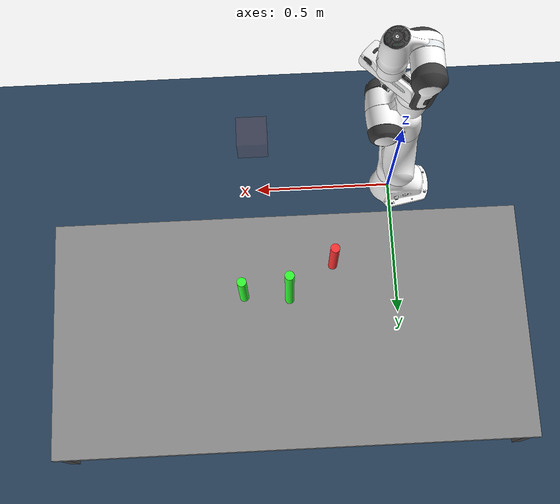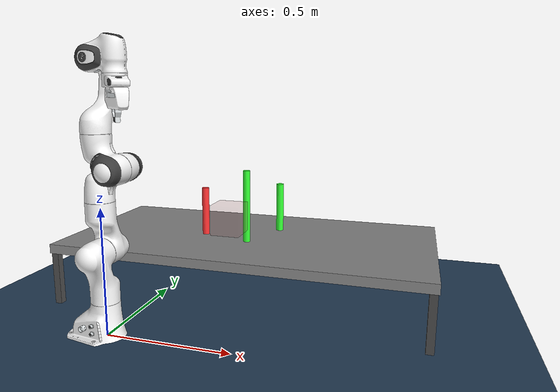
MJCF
<mujoco model="panda scene">
  <include file="base_panda.xml"/>

  <statistic center="0.3 0 0.4" extent="1"/>

  <option timestep="0.005" iterations="5" ls_iterations="8" integrator="implicitfast">
    <flag eulerdamp="disable"/>
  </option>

  <custom>
    <numeric data="12" name="max_contact_points"/>
  </custom>

  <visual>
    <headlight diffuse="0.6 0.6 0.6" ambient="0.3 0.3 0.3" specular="0 0 0"/>
    <rgba haze="0.15 0.25 0.35 1"/>
    <global azimuth="120" elevation="-20"/>
    <scale contactwidth="0.075" contactheight="0.025" forcewidth="0.05" com="0.05" framewidth="0.01" framelength="0.2"/>
  </visual>

  <asset>
    <texture type="skybox" builtin="gradient" rgb1="0.3 0.5 0.7" rgb2="0 0 0" width="512" height="3072"/>
    <texture type="2d" name="groundplane" builtin="checker" mark="edge" rgb1="0.2 0.3 0.4" rgb2="0.1 0.2 0.3"
      markrgb="0.8 0.8 0.8" width="300" height="300"/>
    <material name="groundplane" texture="groundplane" texuniform="true" texrepeat="5 5" reflectance="0.2"/>

    <material name="cylinder_mat1" rgba="1 0.2 0.2 1"/>
    <material name="cylinder_mat2" rgba="0.2 1 0.2 1"/>
    <material name="cylinder_mat3" rgba="0.2 0.2 1 1"/>
  </asset>

  <worldbody>
    <light pos="0 0 1.5" dir="0 0 -1" directional="true"/>

    <!-- Cameras for RGB-D capture -->
    <camera name="top_camera" pos="0.4 0.4 1.5" xyaxes="1 0 0 0 1 0" fovy="60"/>
    <camera name="side_camera" pos="1.6 0.55 0.8" euler="0 1.07 1.57" fovy="55"/>
    <camera name="front_camera" pos="0.4 -0.4 0.7" xyaxes="1 0 0 0 0.4 0.8" fovy="60"/>

    <geom name="floor" size="0 0 0.05" type="plane" material="groundplane" contype="1"/>

    <body name="target" pos="0.5 0 .5" quat="0 1 0 0" mocap="true">
      <geom type="box" size=".05 .05 .05" contype="0" conaffinity="0" rgba=".6 .3 .3 .2"/>
    </body>

    <body name="simple_table" pos="0 0.4 0" quat="0 0 0 1">
      <joint name="table_joint" type="free"/>

      <!-- tabletop -->
      <geom type="box" size="0.8 0.4 0.02" pos="-0.4 -0.2 0.25"
            rgba="0.55 0.55 0.55 1"/>

      <!-- legs -->
      <geom type="box" size="0.015 0.015 0.12" pos=" 0.38  0.18 0.12"
            rgba="0.3 0.3 0.3 1"/>
      <geom type="box" size="0.015 0.015 0.12" pos="-1.18  0.18 0.12"
            rgba="0.3 0.3 0.3 1"/>
      <geom type="box" size="0.015 0.015 0.12" pos=" 0.38 -0.58 0.12"
            rgba="0.3 0.3 0.3 1"/>
      <geom type="box" size="0.015 0.015 0.12" pos="-1.18 -0.58 0.12"
            rgba="0.3 0.3 0.3 1"/>

      <!-- picking sites (mid-thickness) -->
      <site name="site_right" pos="-0.20 0 0.25" size="0.005"
            rgba="1 0 0 1"  type="sphere" euler="-1.57 1.57 0"/>
      <site name="site_left"  pos=" 0.20 0 0.25" size="0.005"
            rgba="0 1 0 1"  type="sphere" euler="-1.57 -1.57 0"/>
    </body>

    <body name="cylinder1" pos="0.25 0.4 0.420">
      <joint name="cylinder1_freejoint" type="free"/>
      <inertial mass="0.05" pos="0 0 0" diaginertia="0.0250 0.0250 0.0125"/>
      <geom name="cylinder1_geom" type="cylinder" size="0.015 0.10" material="cylinder_mat1"
            solimp="0.99 0.99 0.01" solref="0.02 1"/>
    </body>

    <body name="cylinder2" pos="0.55 0.5 0.435">
      <joint name="cylinder2_freejoint" type="free"/>
      <inertial mass="0.05" pos="0 0 0" diaginertia="0.0420 0.0420 0.0120"/>
      <geom name="cylinder2_geom" type="cylinder" size="0.015 0.10" material="cylinder_mat2"
            solimp="0.99 0.99 0.01" solref="0.02 1"/>
    </body>

    <body name="cylinder3" pos="0.4 0.5 0.425">
      <joint name="cylinder3_freejoint" type="free"/>
      <inertial mass="0.05" pos="0 0 0" diaginertia="0.0180 0.0180 0.0072"/>
      <geom name="cylinder3_geom" type="cylinder" size="0.015 0.16" material="cylinder_mat2"
            solimp="0.99 0.99 0.01" solref="0.02 1"/>
    </body>
  </worldbody>
</mujoco>

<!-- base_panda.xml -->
<mujoco model="panda">
  <compiler angle="radian" meshdir="assets" autolimits="true"/>

  <default>
    <default class="panda">
      <material specular="0.5" shininess="0.25"/>
      <joint armature="0.1" damping="1" axis="0 0 1" range="-2.8973 2.8973"/>
      <general dyntype="none" biastype="affine" ctrlrange="-2.8973 2.8973" forcerange="-87 87"/>
      <position forcerange="-100 100"/>
      <default class="finger">
        <joint axis="0 1 0" type="slide" range="0 0.04"/>
      </default>

      <default class="visual">
        <geom type="mesh" contype="0" conaffinity="0" group="2"/>
      </default>
      <default class="collision">
        <geom group="3" type="mesh" contype="0" conaffinity="0"/>
        <default class="primitive_collision">
          <geom group="3" type="box" contype="0" conaffinity="0"
           condim="3" solimp="0.99 0.995 0.01" solref="0.01 1" friction="1 0.005 0.0001"/>
          <default class="fingertip_pad_collision_1">
            <geom type="box" size="0.011 0.0075 0.01" pos="0 0.0185 0.011"/>
          </default>
          <default class="fingertip_pad_collision_2">
            <geom type="box" size="0.011 0.0044 0.0019" pos="0 0.0068 0.0022"/>
          </default>
          <default class="fingertip_pad_collision_3">
            <geom type="box" size="0.00875 0.0035 0.01175" pos="0 0.0159 0.02835" quat="1 0.25 0 0"/>
          </default>
          <default class="fingertip_pad_collision_4">
            <geom type="box" size="0.00875 0.0076 0.00825" pos="0 0.00758 0.04525" conaffinity="3"/>
          </default>
        </default>
      </default>
    </default>
  </default>

  <asset>
    <material class="panda" name="white" rgba="1 1 1 1"/>
    <material class="panda" name="off_white" rgba="0.901961 0.921569 0.929412 1"/>
    <material class="panda" name="black" rgba="0.25 0.25 0.25 1"/>
    <material class="panda" name="green" rgba="0 1 0 1"/>
    <material class="panda" name="light_blue" rgba="0.039216 0.541176 0.780392 1"/>

    <!-- Collision meshes -->
    <mesh name="link0_c" file="link0.stl"/>
    <mesh name="link1_c" file="link1.stl"/>
    <mesh name="link2_c" file="link2.stl"/>
    <mesh name="link3_c" file="link3.stl"/>
    <mesh name="link4_c" file="link4.stl"/>
    <mesh name="link5_c0" file="link5_collision_0.obj"/>
    <mesh name="link5_c1" file="link5_collision_1.obj"/>
    <mesh name="link5_c2" file="link5_collision_2.obj"/>
    <mesh name="link6_c" file="link6.stl"/>
    <mesh name="link7_c" file="link7.stl"/>
    <mesh name="hand_c" file="hand.stl"/>

    <!-- Visual meshes -->
    <mesh file="link0_0.obj"/>
    <mesh file="link0_1.obj"/>
    <mesh file="link0_2.obj"/>
    <mesh file="link0_3.obj"/>
    <mesh file="link0_4.obj"/>
    <mesh file="link0_5.obj"/>
    <mesh file="link0_7.obj"/>
    <mesh file="link0_8.obj"/>
    <mesh file="link0_9.obj"/>
    <mesh file="link0_10.obj"/>
    <mesh file="link0_11.obj"/>
    <mesh file="link1.obj"/>
    <mesh file="link2.obj"/>
    <mesh file="link3_0.obj"/>
    <mesh file="link3_1.obj"/>
    <mesh file="link3_2.obj"/>
    <mesh file="link3_3.obj"/>
    <mesh file="link4_0.obj"/>
    <mesh file="link4_1.obj"/>
    <mesh file="link4_2.obj"/>
    <mesh file="link4_3.obj"/>
    <mesh file="link5_0.obj"/>
    <mesh file="link5_1.obj"/>
    <mesh file="link5_2.obj"/>
    <mesh file="link6_0.obj"/>
    <mesh file="link6_1.obj"/>
    <mesh file="link6_2.obj"/>
    <mesh file="link6_3.obj"/>
    <mesh file="link6_4.obj"/>
    <mesh file="link6_5.obj"/>
    <mesh file="link6_6.obj"/>
    <mesh file="link6_7.obj"/>
    <mesh file="link6_8.obj"/>
    <mesh file="link6_9.obj"/>
    <mesh file="link6_10.obj"/>
    <mesh file="link6_11.obj"/>
    <mesh file="link6_12.obj"/>
    <mesh file="link6_13.obj"/>
    <mesh file="link6_14.obj"/>
    <mesh file="link6_15.obj"/>
    <mesh file="link6_16.obj"/>
    <mesh file="link7_0.obj"/>
    <mesh file="link7_1.obj"/>
    <mesh file="link7_2.obj"/>
    <mesh file="link7_3.obj"/>
    <mesh file="link7_4.obj"/>
    <mesh file="link7_5.obj"/>
    <mesh file="link7_6.obj"/>
    <mesh file="link7_7.obj"/>
    <mesh file="hand_0.obj"/>
    <mesh file="hand_1.obj"/>
    <mesh file="hand_2.obj"/>
    <mesh file="hand_3.obj"/>
    <mesh file="hand_4.obj"/>
    <mesh file="finger_0.obj"/>
    <mesh file="finger_1.obj"/>
  </asset>

  <worldbody>
    <light name="top" pos="0 0 2" mode="trackcom"/>
    <body name="link0" childclass="panda">
      <inertial mass="0.629769" pos="-0.041018 -0.00014 0.049974"
        fullinertia="0.00315 0.00388 0.004285 8.2904e-7 0.00015 8.2299e-6"/>
      <geom mesh="link0_0" material="off_white" class="visual"/>
      <geom mesh="link0_1" material="black" class="visual"/>
      <geom mesh="link0_2" material="off_white" class="visual"/>
      <geom mesh="link0_3" material="black" class="visual"/>
      <geom mesh="link0_4" material="off_white" class="visual"/>
      <geom mesh="link0_5" material="black" class="visual"/>
      <geom mesh="link0_7" material="white" class="visual"/>
      <geom mesh="link0_8" material="white" class="visual"/>
      <geom mesh="link0_9" material="black" class="visual"/>
      <geom mesh="link0_10" material="off_white" class="visual"/>
      <geom mesh="link0_11" material="white" class="visual"/>
      <geom mesh="link0_c" class="collision"/>
      <body name="link1" pos="0 0 0.333">
        <inertial mass="4.970684" pos="0.003875 0.002081 -0.04762"
          fullinertia="0.70337 0.70661 0.0091170 -0.00013900 0.0067720 0.019169"/>
        <joint name="joint1" damping="40"/>
        <geom material="white" mesh="link1" class="visual"/>
        <geom mesh="link1_c" class="collision"/>
        <body name="link2" quat="1 -1 0 0">
          <inertial mass="0.646926" pos="-0.003141 -0.02872 0.003495"
            fullinertia="0.0079620 2.8110e-2 2.5995e-2 -3.925e-3 1.0254e-2 7.04e-4"/>
          <joint name="joint2" range="-1.7628 1.7628" damping="40"/>
          <geom material="white" mesh="link2" class="visual"/>
          <geom mesh="link2_c" class="collision"/>
          <body name="link3" pos="0 -0.316 0" quat="1 1 0 0">
            <joint name="joint3" damping="40"/>
            <inertial mass="3.228604" pos="2.7518e-2 3.9252e-2 -6.6502e-2"
              fullinertia="3.7242e-2 3.6155e-2 1.083e-2 -4.761e-3 -1.1396e-2 -1.2805e-2"/>
            <geom mesh="link3_0" material="white" class="visual"/>
            <geom mesh="link3_1" material="white" class="visual"/>
            <geom mesh="link3_2" material="white" class="visual"/>
            <geom mesh="link3_3" material="black" class="visual"/>
            <geom mesh="link3_c" class="collision"/>
            <body name="link4" pos="0.0825 0 0" quat="1 1 0 0">
              <inertial mass="3.587895" pos="-5.317e-2 1.04419e-1 2.7454e-2"
                fullinertia="2.5853e-2 1.9552e-2 2.8323e-2 7.796e-3 -1.332e-3 8.641e-3"/>
              <joint name="joint4" range="-3.0718 -0.0698" damping="40"/>
              <geom mesh="link4_0" material="white" class="visual"/>
              <geom mesh="link4_1" material="white" class="visual"/>
              <geom mesh="link4_2" material="black" class="visual"/>
              <geom mesh="link4_3" material="white" class="visual"/>
              <geom mesh="link4_c" class="collision"/>
              <body name="link5" pos="-0.0825 0.384 0" quat="1 -1 0 0">
                <inertial mass="1.225946" pos="-1.1953e-2 4.1065e-2 -3.8437e-2"
                  fullinertia="3.5549e-2 2.9474e-2 8.627e-3 -2.117e-3 -4.037e-3 2.29e-4"/>
                <joint name="joint5" damping="2"/>
                <geom mesh="link5_0" material="black" class="visual"/>
                <geom mesh="link5_1" material="white" class="visual"/>
                <geom mesh="link5_2" material="white" class="visual"/>
                <geom mesh="link5_c0" class="collision"/>
                <geom mesh="link5_c1" class="collision"/>
                <geom mesh="link5_c2" class="collision"/>
                <body name="link6" quat="1 1 0 0">
                  <inertial mass="1.666555" pos="6.0149e-2 -1.4117e-2 -1.0517e-2"
                    fullinertia="1.964e-3 4.354e-3 5.433e-3 1.09e-4 -1.158e-3 3.41e-4"/>
                  <joint name="joint6" range="-0.0175 3.7525" damping="2"/>
                  <geom mesh="link6_0" material="off_white" class="visual"/>
                  <geom mesh="link6_1" material="white" class="visual"/>
                  <geom mesh="link6_2" material="black" class="visual"/>
                  <geom mesh="link6_3" material="white" class="visual"/>
                  <geom mesh="link6_4" material="white" class="visual"/>
                  <geom mesh="link6_5" material="white" class="visual"/>
                  <geom mesh="link6_6" material="white" class="visual"/>
                  <geom mesh="link6_7" material="light_blue" class="visual"/>
                  <geom mesh="link6_8" material="light_blue" class="visual"/>
                  <geom mesh="link6_9" material="black" class="visual"/>
                  <geom mesh="link6_10" material="black" class="visual"/>
                  <geom mesh="link6_11" material="white" class="visual"/>
                  <geom mesh="link6_12" material="green" class="visual"/>
                  <geom mesh="link6_13" material="white" class="visual"/>
                  <geom mesh="link6_14" material="black" class="visual"/>
                  <geom mesh="link6_15" material="black" class="visual"/>
                  <geom mesh="link6_16" material="white" class="visual"/>
                  <geom mesh="link6_c" class="collision"/>
                  <body name="link7" pos="0.088 0 0" quat="1 1 0 0">
                    <inertial mass="7.35522e-01" pos="1.0517e-2 -4.252e-3 6.1597e-2"
                      fullinertia="1.2516e-2 1.0027e-2 4.815e-3 -4.28e-4 -1.196e-3 -7.41e-4"/>
                    <joint name="joint7" damping="2"/>
                    <geom mesh="link7_0" material="white" class="visual"/>
                    <geom mesh="link7_1" material="black" class="visual"/>
                    <geom mesh="link7_2" material="black" class="visual"/>
                    <geom mesh="link7_3" material="black" class="visual"/>
                    <geom mesh="link7_4" material="black" class="visual"/>
                    <geom mesh="link7_5" material="black" class="visual"/>
                    <geom mesh="link7_6" material="black" class="visual"/>
                    <geom mesh="link7_7" material="white" class="visual"/>
                    <geom mesh="link7_c" class="collision"/>
                    <geom name="link7_capsule" type="cylinder" class="collision"
                     conaffinity="1" size="0.055 0.025" pos="0 0 0.06"/>
                    <body name="hand" pos="0 0 0.107" quat="0.9238795 0 0 -0.3826834">
                      <inertial mass="0.73" pos="-0.01 0 0.03" diaginertia="0.001 0.0025 0.0017"/>
                      <geom mesh="hand_0" material="off_white" class="visual"/>
                      <geom mesh="hand_1" material="black" class="visual"/>
                      <geom mesh="hand_2" material="black" class="visual"/>
                      <geom mesh="hand_3" material="white" class="visual"/>
                      <geom mesh="hand_4" material="off_white" class="visual"/>
                      <geom mesh="hand_c" class="collision"/>
                      <geom name="hand_capsule" type="capsule"
                       class="collision" conaffinity="1" size="0.04 0.06"
                       quat="1 1 0 0" pos="0 0 0.03"/>
                      <site name="gripper" pos="0 0 0.1"/>
                      <site pos="0 0 0.09" name="attachment_site"/>
                      <body name="left_finger" pos="0 0 0.0584">
                        <inertial mass="0.015" pos="0 0 0" diaginertia="2.375e-6 2.375e-6 7.5e-7"/>
                        <joint name="finger_joint1" class="finger" damping="10"/>
                        <geom mesh="finger_0" material="off_white" class="visual"/>
                        <geom mesh="finger_1" material="black" class="visual"/>
                        <geom mesh="finger_0" class="collision"/>
                        <geom class="fingertip_pad_collision_1"/>
                        <geom class="fingertip_pad_collision_2"/>
                        <geom class="fingertip_pad_collision_3"/>
                        <geom name="left_finger_pad" class="fingertip_pad_collision_4"/>
                      </body>
                      <body name="right_finger" pos="0 0 0.0584" quat="0 0 0 1">
                        <inertial mass="0.015" pos="0 0 0" diaginertia="2.375e-6 2.375e-6 7.5e-7"/>
                        <joint name="finger_joint2" class="finger" damping="10"/>
                        <geom mesh="finger_0" material="off_white" class="visual"/>
                        <geom mesh="finger_1" material="black" class="visual"/>
                        <geom mesh="finger_0" class="collision"/>
                        <geom class="fingertip_pad_collision_1"/>
                        <geom class="fingertip_pad_collision_2"/>
                        <geom class="fingertip_pad_collision_3"/>
                        <geom name="right_finger_pad" class="fingertip_pad_collision_4"/>
                      </body>
                    </body>
                  </body>
                </body>
              </body>
            </body>
          </body>
        </body>
      </body>
    </body>
  </worldbody>

  <equality>
    <joint joint1="finger_joint1" joint2="finger_joint2" solimp="0.95 0.99 0.001" solref="0.005 1"/>
  </equality>

  <actuator>
    <position class="panda" name="actuator1" joint="joint1" kp="1000" kv="20"
     ctrlrange="-2.8973 2.8973"/>
    <position class="panda" name="actuator2" joint="joint2" kp="1000" kv="20"
     ctrlrange="-1.7628 1.7628"/>
    <position class="panda" name="actuator3" joint="joint3" kp="750" kv="4"
     ctrlrange="-2.8973 2.8973"/>
    <position class="panda" name="actuator4" joint="joint4" kp="750" kv="4"
     ctrlrange="-3.0718 -0.0698"/>
    <position class="panda" name="actuator5" joint="joint5" kp="300" kv="2"
     forcerange="-12 12" ctrlrange="-2.8973 2.8973"/>
    <position class="panda" name="actuator6" joint="joint6" kp="300" kv="2" forcerange="-12 12"
      ctrlrange="-0.0175 3.7525"/>
    <position class="panda" name="actuator7" joint="joint7" kp="300" kv="2" forcerange="-12 12"/>
    <general class="panda" name="actuator8" joint="finger_joint1"
     ctrlrange="0 0.04" gainprm="350 0 0" biasprm="0 -350 -10" forcerange="-200 200"/>
  </actuator>

</mujoco>
